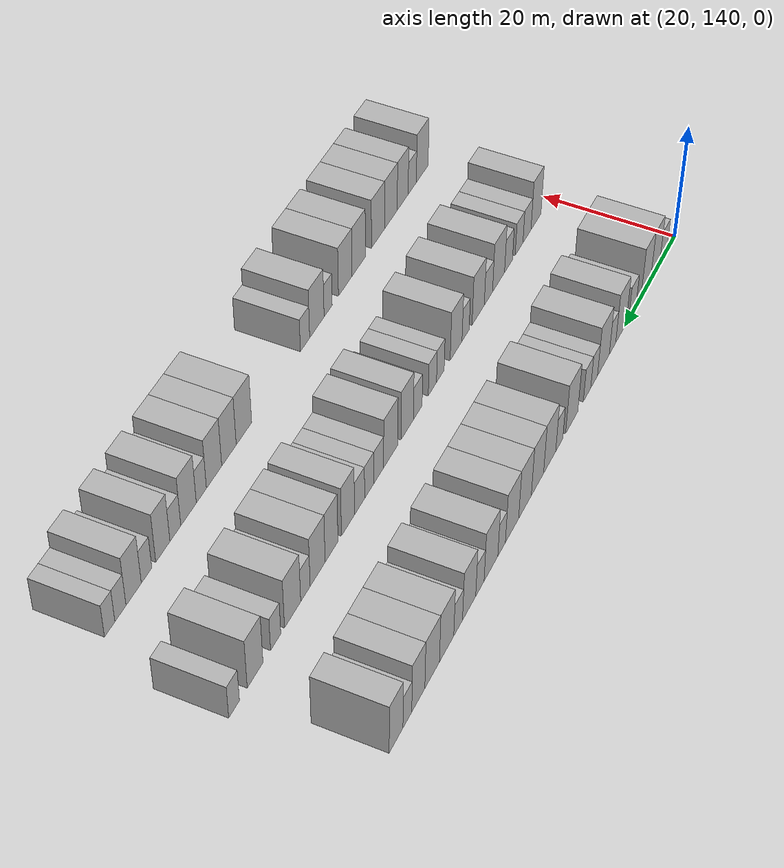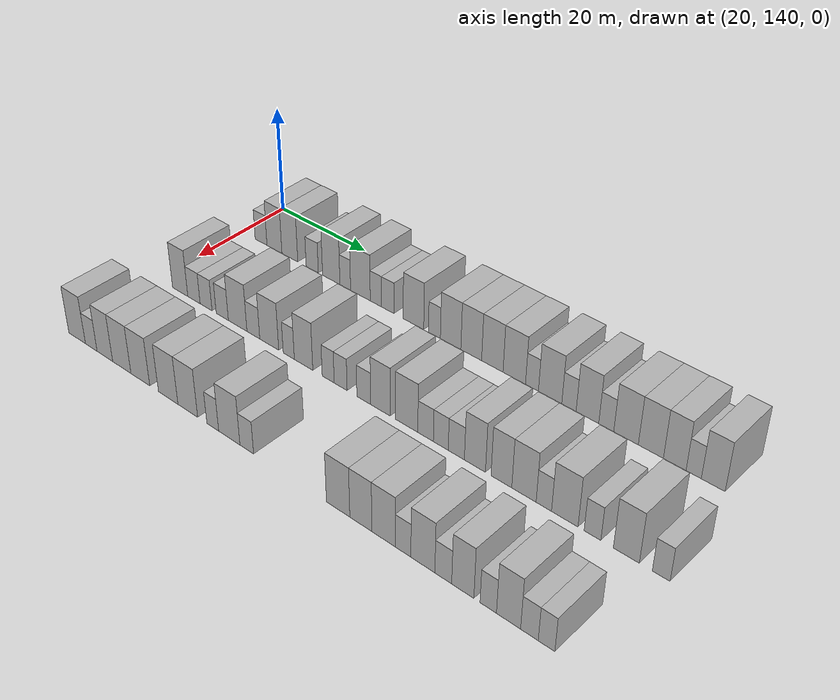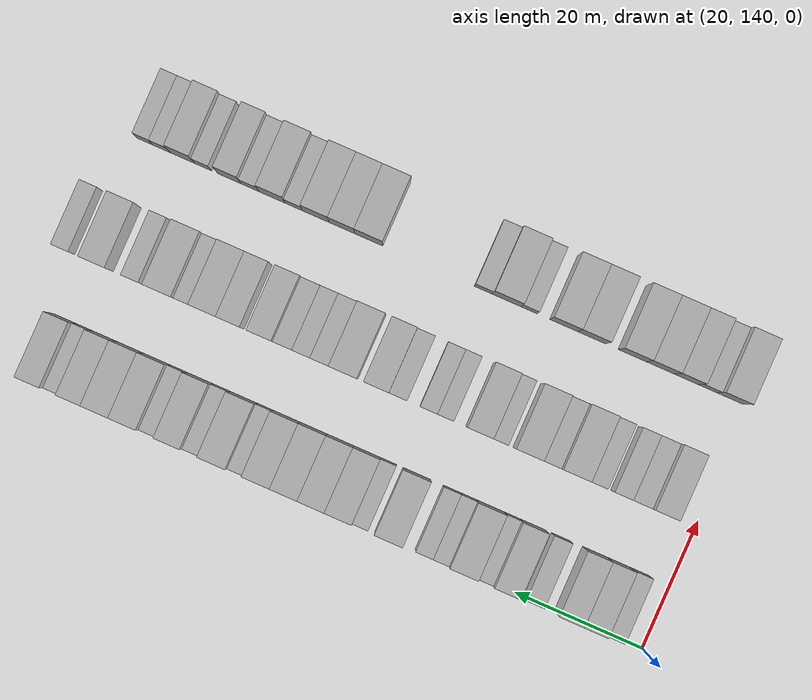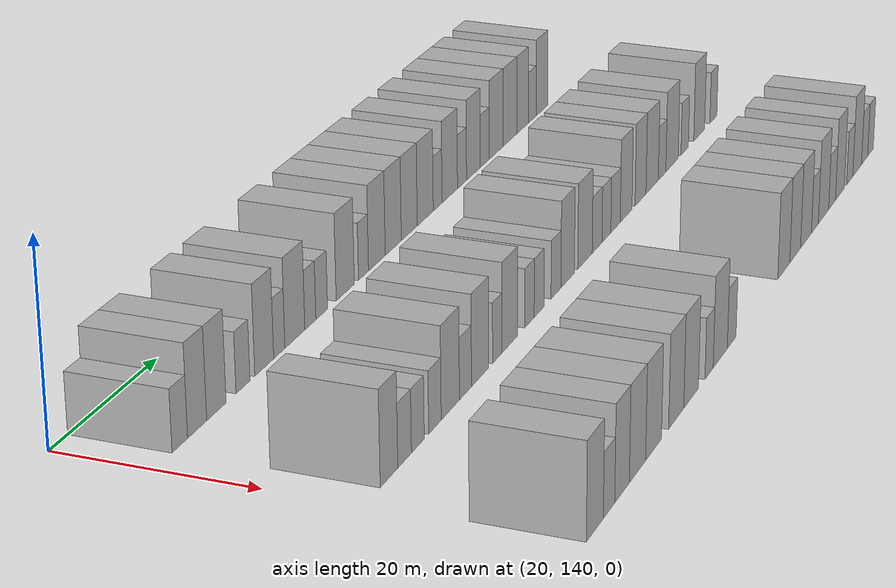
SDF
<sdf version="1.6">
 <world name="default">
  <model name="building_93">
   <static>1</static>
   <pose>25.0000 144.8030 0 0.000000 0.000000 0.000000</pose>
   <link name="link">
    <pose>0 0 3.00 0 0 0</pose>
    <collision name="collision"><geometry><box><size>10.0000 2.9316 6.0000</size></box></geometry></collision>
    <visual name="visual">
     <cast_shadows>0</cast_shadows>
     <geometry><box><size>10.0000 2.9316 6.0000</size></box></geometry>
     <material>
      <script>
       <uri>model://HANNAS_wall/materials/scripts</uri>
       <uri>model://HANNAS_wall/materials/textures</uri>
       <name>vrc/HANNAS_wall</name>
      </script>
     </material>
    </visual>
   </link>
  </model>
  <model name="building_94">
   <static>1</static>
   <pose>25.0000 148.1023 0 0.000000 0.000000 0.000000</pose>
   <link name="link">
    <pose>0 0 4.50 0 0 0</pose>
    <collision name="collision"><geometry><box><size>10.0000 3.6670 9.0000</size></box></geometry></collision>
    <visual name="visual">
     <cast_shadows>0</cast_shadows>
     <geometry><box><size>10.0000 3.6670 9.0000</size></box></geometry>
     <material>
      <script>
       <uri>model://HANNAS_wall/materials/scripts</uri>
       <uri>model://HANNAS_wall/materials/textures</uri>
       <name>vrc/HANNAS_wall</name>
      </script>
     </material>
    </visual>
   </link>
  </model>
  <model name="building_95">
   <static>1</static>
   <pose>25.0000 151.8458 0 0.000000 0.000000 0.000000</pose>
   <link name="link">
    <pose>0 0 4.50 0 0 0</pose>
    <collision name="collision"><geometry><box><size>10.0000 3.8200 9.0000</size></box></geometry></collision>
    <visual name="visual">
     <cast_shadows>0</cast_shadows>
     <geometry><box><size>10.0000 3.8200 9.0000</size></box></geometry>
     <material>
      <script>
       <uri>model://HANNAS_wall/materials/scripts</uri>
       <uri>model://HANNAS_wall/materials/textures</uri>
       <name>vrc/HANNAS_wall</name>
      </script>
     </material>
    </visual>
   </link>
  </model>
  <model name="building_96">
   <static>1</static>
   <pose>25.0000 157.1826 0 0.000000 0.000000 0.000000</pose>
   <link name="link">
    <pose>0 0 3.00 0 0 0</pose>
    <collision name="collision"><geometry><box><size>10.0000 2.8535 6.0000</size></box></geometry></collision>
    <visual name="visual">
     <cast_shadows>0</cast_shadows>
     <geometry><box><size>10.0000 2.8535 6.0000</size></box></geometry>
     <material>
      <script>
       <uri>model://HANNAS_wall/materials/scripts</uri>
       <uri>model://HANNAS_wall/materials/textures</uri>
       <name>vrc/HANNAS_wall</name>
      </script>
     </material>
    </visual>
   </link>
  </model>
  <model name="building_97">
   <static>1</static>
   <pose>25.0000 161.6057 0 0.000000 0.000000 0.000000</pose>
   <link name="link">
    <pose>0 0 4.50 0 0 0</pose>
    <collision name="collision"><geometry><box><size>10.0000 3.9927 9.0000</size></box></geometry></collision>
    <visual name="visual">
     <cast_shadows>0</cast_shadows>
     <geometry><box><size>10.0000 3.9927 9.0000</size></box></geometry>
     <material>
      <script>
       <uri>model://HANNAS_wall/materials/scripts</uri>
       <uri>model://HANNAS_wall/materials/textures</uri>
       <name>vrc/HANNAS_wall</name>
      </script>
     </material>
    </visual>
   </link>
  </model>
  <model name="building_98">
   <static>1</static>
   <pose>25.0000 164.8138 0 0.000000 0.000000 0.000000</pose>
   <link name="link">
    <pose>0 0 3.00 0 0 0</pose>
    <collision name="collision"><geometry><box><size>10.0000 2.4236 6.0000</size></box></geometry></collision>
    <visual name="visual">
     <cast_shadows>0</cast_shadows>
     <geometry><box><size>10.0000 2.4236 6.0000</size></box></geometry>
     <material>
      <script>
       <uri>model://HANNAS_wall/materials/scripts</uri>
       <uri>model://HANNAS_wall/materials/textures</uri>
       <name>vrc/HANNAS_wall</name>
      </script>
     </material>
    </visual>
   </link>
  </model>
  <model name="building_99">
   <static>1</static>
   <pose>25.0000 168.2265 0 0.000000 0.000000 0.000000</pose>
   <link name="link">
    <pose>0 0 4.50 0 0 0</pose>
    <collision name="collision"><geometry><box><size>10.0000 4.4019 9.0000</size></box></geometry></collision>
    <visual name="visual">
     <cast_shadows>0</cast_shadows>
     <geometry><box><size>10.0000 4.4019 9.0000</size></box></geometry>
     <material>
      <script>
       <uri>model://HANNAS_wall/materials/scripts</uri>
       <uri>model://HANNAS_wall/materials/textures</uri>
       <name>vrc/HANNAS_wall</name>
      </script>
     </material>
    </visual>
   </link>
  </model>
  <model name="building_100">
   <static>1</static>
   <pose>25.0000 171.6701 0 0.000000 0.000000 0.000000</pose>
   <link name="link">
    <pose>0 0 3.00 0 0 0</pose>
    <collision name="collision"><geometry><box><size>10.0000 2.4854 6.0000</size></box></geometry></collision>
    <visual name="visual">
     <cast_shadows>0</cast_shadows>
     <geometry><box><size>10.0000 2.4854 6.0000</size></box></geometry>
     <material>
      <script>
       <uri>model://HANNAS_wall/materials/scripts</uri>
       <uri>model://HANNAS_wall/materials/textures</uri>
       <name>vrc/HANNAS_wall</name>
      </script>
     </material>
    </visual>
   </link>
  </model>
  <model name="building_101">
   <static>1</static>
   <pose>25.0000 174.2601 0 0.000000 0.000000 0.000000</pose>
   <link name="link">
    <pose>0 0 3.00 0 0 0</pose>
    <collision name="collision"><geometry><box><size>10.0000 2.6946 6.0000</size></box></geometry></collision>
    <visual name="visual">
     <cast_shadows>0</cast_shadows>
     <geometry><box><size>10.0000 2.6946 6.0000</size></box></geometry>
     <material>
      <script>
       <uri>model://HANNAS_wall/materials/scripts</uri>
       <uri>model://HANNAS_wall/materials/textures</uri>
       <name>vrc/HANNAS_wall</name>
      </script>
     </material>
    </visual>
   </link>
  </model>
  <model name="building_102">
   <static>1</static>
   <pose>25.0000 179.7743 0 0.000000 0.000000 0.000000</pose>
   <link name="link">
    <pose>0 0 4.50 0 0 0</pose>
    <collision name="collision"><geometry><box><size>10.0000 4.3339 9.0000</size></box></geometry></collision>
    <visual name="visual">
     <cast_shadows>0</cast_shadows>
     <geometry><box><size>10.0000 4.3339 9.0000</size></box></geometry>
     <material>
      <script>
       <uri>model://HANNAS_wall/materials/scripts</uri>
       <uri>model://HANNAS_wall/materials/textures</uri>
       <name>vrc/HANNAS_wall</name>
      </script>
     </material>
    </visual>
   </link>
  </model>
  <model name="building_103">
   <static>1</static>
   <pose>25.0000 184.1730 0 0.000000 0.000000 0.000000</pose>
   <link name="link">
    <pose>0 0 3.00 0 0 0</pose>
    <collision name="collision"><geometry><box><size>10.0000 2.4634 6.0000</size></box></geometry></collision>
    <visual name="visual">
     <cast_shadows>0</cast_shadows>
     <geometry><box><size>10.0000 2.4634 6.0000</size></box></geometry>
     <material>
      <script>
       <uri>model://HANNAS_wall/materials/scripts</uri>
       <uri>model://HANNAS_wall/materials/textures</uri>
       <name>vrc/HANNAS_wall</name>
      </script>
     </material>
    </visual>
   </link>
  </model>
  <model name="building_104">
   <static>1</static>
   <pose>25.0000 187.4968 0 0.000000 0.000000 0.000000</pose>
   <link name="link">
    <pose>0 0 4.50 0 0 0</pose>
    <collision name="collision"><geometry><box><size>10.0000 4.1841 9.0000</size></box></geometry></collision>
    <visual name="visual">
     <cast_shadows>0</cast_shadows>
     <geometry><box><size>10.0000 4.1841 9.0000</size></box></geometry>
     <material>
      <script>
       <uri>model://HANNAS_wall/materials/scripts</uri>
       <uri>model://HANNAS_wall/materials/textures</uri>
       <name>vrc/HANNAS_wall</name>
      </script>
     </material>
    </visual>
   </link>
  </model>
  <model name="building_105">
   <static>1</static>
   <pose>25.0000 191.6620 0 0.000000 0.000000 0.000000</pose>
   <link name="link">
    <pose>0 0 4.50 0 0 0</pose>
    <collision name="collision"><geometry><box><size>10.0000 4.1463 9.0000</size></box></geometry></collision>
    <visual name="visual">
     <cast_shadows>0</cast_shadows>
     <geometry><box><size>10.0000 4.1463 9.0000</size></box></geometry>
     <material>
      <script>
       <uri>model://HANNAS_wall/materials/scripts</uri>
       <uri>model://HANNAS_wall/materials/textures</uri>
       <name>vrc/HANNAS_wall</name>
      </script>
     </material>
    </visual>
   </link>
  </model>
  <model name="building_106">
   <static>1</static>
   <pose>25.0000 195.8361 0 0.000000 0.000000 0.000000</pose>
   <link name="link">
    <pose>0 0 4.50 0 0 0</pose>
    <collision name="collision"><geometry><box><size>10.0000 4.2018 9.0000</size></box></geometry></collision>
    <visual name="visual">
     <cast_shadows>0</cast_shadows>
     <geometry><box><size>10.0000 4.2018 9.0000</size></box></geometry>
     <material>
      <script>
       <uri>model://HANNAS_wall/materials/scripts</uri>
       <uri>model://HANNAS_wall/materials/textures</uri>
       <name>vrc/HANNAS_wall</name>
      </script>
     </material>
    </visual>
   </link>
  </model>
  <model name="building_107">
   <static>1</static>
   <pose>25.0000 200.0921 0 0.000000 0.000000 0.000000</pose>
   <link name="link">
    <pose>0 0 4.50 0 0 0</pose>
    <collision name="collision"><geometry><box><size>10.0000 4.3103 9.0000</size></box></geometry></collision>
    <visual name="visual">
     <cast_shadows>0</cast_shadows>
     <geometry><box><size>10.0000 4.3103 9.0000</size></box></geometry>
     <material>
      <script>
       <uri>model://HANNAS_wall/materials/scripts</uri>
       <uri>model://HANNAS_wall/materials/textures</uri>
       <name>vrc/HANNAS_wall</name>
      </script>
     </material>
    </visual>
   </link>
  </model>
  <model name="building_108">
   <static>1</static>
   <pose>25.0000 203.4640 0 0.000000 0.000000 0.000000</pose>
   <link name="link">
    <pose>0 0 3.00 0 0 0</pose>
    <collision name="collision"><geometry><box><size>10.0000 2.4335 6.0000</size></box></geometry></collision>
    <visual name="visual">
     <cast_shadows>0</cast_shadows>
     <geometry><box><size>10.0000 2.4335 6.0000</size></box></geometry>
     <material>
      <script>
       <uri>model://HANNAS_wall/materials/scripts</uri>
       <uri>model://HANNAS_wall/materials/textures</uri>
       <name>vrc/HANNAS_wall</name>
      </script>
     </material>
    </visual>
   </link>
  </model>
  <model name="building_109">
   <static>1</static>
   <pose>25.0000 206.8471 0 0.000000 0.000000 0.000000</pose>
   <link name="link">
    <pose>0 0 4.50 0 0 0</pose>
    <collision name="collision"><geometry><box><size>10.0000 4.3325 9.0000</size></box></geometry></collision>
    <visual name="visual">
     <cast_shadows>0</cast_shadows>
     <geometry><box><size>10.0000 4.3325 9.0000</size></box></geometry>
     <material>
      <script>
       <uri>model://HANNAS_wall/materials/scripts</uri>
       <uri>model://HANNAS_wall/materials/textures</uri>
       <name>vrc/HANNAS_wall</name>
      </script>
     </material>
    </visual>
   </link>
  </model>
  <model name="building_110">
   <static>1</static>
   <pose>25.0000 210.3174 0 0.000000 0.000000 0.000000</pose>
   <link name="link">
    <pose>0 0 3.00 0 0 0</pose>
    <collision name="collision"><geometry><box><size>10.0000 2.6081 6.0000</size></box></geometry></collision>
    <visual name="visual">
     <cast_shadows>0</cast_shadows>
     <geometry><box><size>10.0000 2.6081 6.0000</size></box></geometry>
     <material>
      <script>
       <uri>model://HANNAS_wall/materials/scripts</uri>
       <uri>model://HANNAS_wall/materials/textures</uri>
       <name>vrc/HANNAS_wall</name>
      </script>
     </material>
    </visual>
   </link>
  </model>
  <model name="building_111">
   <static>1</static>
   <pose>25.0000 213.6458 0 0.000000 0.000000 0.000000</pose>
   <link name="link">
    <pose>0 0 4.50 0 0 0</pose>
    <collision name="collision"><geometry><box><size>10.0000 4.0488 9.0000</size></box></geometry></collision>
    <visual name="visual">
     <cast_shadows>0</cast_shadows>
     <geometry><box><size>10.0000 4.0488 9.0000</size></box></geometry>
     <material>
      <script>
       <uri>model://HANNAS_wall/materials/scripts</uri>
       <uri>model://HANNAS_wall/materials/textures</uri>
       <name>vrc/HANNAS_wall</name>
      </script>
     </material>
    </visual>
   </link>
  </model>
  <model name="building_112">
   <static>1</static>
   <pose>25.0000 216.9913 0 0.000000 0.000000 0.000000</pose>
   <link name="link">
    <pose>0 0 3.00 0 0 0</pose>
    <collision name="collision"><geometry><box><size>10.0000 2.6421 6.0000</size></box></geometry></collision>
    <visual name="visual">
     <cast_shadows>0</cast_shadows>
     <geometry><box><size>10.0000 2.6421 6.0000</size></box></geometry>
     <material>
      <script>
       <uri>model://HANNAS_wall/materials/scripts</uri>
       <uri>model://HANNAS_wall/materials/textures</uri>
       <name>vrc/HANNAS_wall</name>
      </script>
     </material>
    </visual>
   </link>
  </model>
  <model name="building_113">
   <static>1</static>
   <pose>25.0000 220.4336 0 0.000000 0.000000 0.000000</pose>
   <link name="link">
    <pose>0 0 4.50 0 0 0</pose>
    <collision name="collision"><geometry><box><size>10.0000 4.2424 9.0000</size></box></geometry></collision>
    <visual name="visual">
     <cast_shadows>0</cast_shadows>
     <geometry><box><size>10.0000 4.2424 9.0000</size></box></geometry>
     <material>
      <script>
       <uri>model://HANNAS_wall/materials/scripts</uri>
       <uri>model://HANNAS_wall/materials/textures</uri>
       <name>vrc/HANNAS_wall</name>
      </script>
     </material>
    </visual>
   </link>
  </model>
  <model name="building_114">
   <static>1</static>
   <pose>25.0000 224.6761 0 0.000000 0.000000 0.000000</pose>
   <link name="link">
    <pose>0 0 4.50 0 0 0</pose>
    <collision name="collision"><geometry><box><size>10.0000 4.2427 9.0000</size></box></geometry></collision>
    <visual name="visual">
     <cast_shadows>0</cast_shadows>
     <geometry><box><size>10.0000 4.2427 9.0000</size></box></geometry>
     <material>
      <script>
       <uri>model://HANNAS_wall/materials/scripts</uri>
       <uri>model://HANNAS_wall/materials/textures</uri>
       <name>vrc/HANNAS_wall</name>
      </script>
     </material>
    </visual>
   </link>
  </model>
  <model name="building_115">
   <static>1</static>
   <pose>25.0000 228.6685 0 0.000000 0.000000 0.000000</pose>
   <link name="link">
    <pose>0 0 4.50 0 0 0</pose>
    <collision name="collision"><geometry><box><size>10.0000 3.7419 9.0000</size></box></geometry></collision>
    <visual name="visual">
     <cast_shadows>0</cast_shadows>
     <geometry><box><size>10.0000 3.7419 9.0000</size></box></geometry>
     <material>
      <script>
       <uri>model://HANNAS_wall/materials/scripts</uri>
       <uri>model://HANNAS_wall/materials/textures</uri>
       <name>vrc/HANNAS_wall</name>
      </script>
     </material>
    </visual>
   </link>
  </model>
  <model name="building_116">
   <static>1</static>
   <pose>25.0000 231.7791 0 0.000000 0.000000 0.000000</pose>
   <link name="link">
    <pose>0 0 3.00 0 0 0</pose>
    <collision name="collision"><geometry><box><size>10.0000 2.4793 6.0000</size></box></geometry></collision>
    <visual name="visual">
     <cast_shadows>0</cast_shadows>
     <geometry><box><size>10.0000 2.4793 6.0000</size></box></geometry>
     <material>
      <script>
       <uri>model://HANNAS_wall/materials/scripts</uri>
       <uri>model://HANNAS_wall/materials/textures</uri>
       <name>vrc/HANNAS_wall</name>
      </script>
     </material>
    </visual>
   </link>
  </model>
  <model name="building_117">
   <static>1</static>
   <pose>25.0000 234.9269 0 0.000000 0.000000 0.000000</pose>
   <link name="link">
    <pose>0 0 4.50 0 0 0</pose>
    <collision name="collision"><geometry><box><size>10.0000 3.8163 9.0000</size></box></geometry></collision>
    <visual name="visual">
     <cast_shadows>0</cast_shadows>
     <geometry><box><size>10.0000 3.8163 9.0000</size></box></geometry>
     <material>
      <script>
       <uri>model://HANNAS_wall/materials/scripts</uri>
       <uri>model://HANNAS_wall/materials/textures</uri>
       <name>vrc/HANNAS_wall</name>
      </script>
     </material>
    </visual>
   </link>
  </model>
  <model name="building_221">
   <static>1</static>
   <pose>44.0000 145.5382 0 0.000000 0.000000 0.000000</pose>
   <link name="link">
    <pose>0 0 4.50 0 0 0</pose>
    <collision name="collision"><geometry><box><size>10.0000 3.7635 9.0000</size></box></geometry></collision>
    <visual name="visual">
     <cast_shadows>0</cast_shadows>
     <geometry><box><size>10.0000 3.7635 9.0000</size></box></geometry>
     <material>
      <script>
       <uri>model://HANNAS_wall/materials/scripts</uri>
       <uri>model://HANNAS_wall/materials/textures</uri>
       <name>vrc/HANNAS_wall</name>
      </script>
     </material>
    </visual>
   </link>
  </model>
  <model name="building_222">
   <static>1</static>
   <pose>44.0000 148.9173 0 0.000000 0.000000 0.000000</pose>
   <link name="link">
    <pose>0 0 3.00 0 0 0</pose>
    <collision name="collision"><geometry><box><size>10.0000 2.9948 6.0000</size></box></geometry></collision>
    <visual name="visual">
     <cast_shadows>0</cast_shadows>
     <geometry><box><size>10.0000 2.9948 6.0000</size></box></geometry>
     <material>
      <script>
       <uri>model://HANNAS_wall/materials/scripts</uri>
       <uri>model://HANNAS_wall/materials/textures</uri>
       <name>vrc/HANNAS_wall</name>
      </script>
     </material>
    </visual>
   </link>
  </model>
  <model name="building_223">
   <static>1</static>
   <pose>44.0000 151.8468 0 0.000000 0.000000 0.000000</pose>
   <link name="link">
    <pose>0 0 3.00 0 0 0</pose>
    <collision name="collision"><geometry><box><size>10.0000 2.8642 6.0000</size></box></geometry></collision>
    <visual name="visual">
     <cast_shadows>0</cast_shadows>
     <geometry><box><size>10.0000 2.8642 6.0000</size></box></geometry>
     <material>
      <script>
       <uri>model://HANNAS_wall/materials/scripts</uri>
       <uri>model://HANNAS_wall/materials/textures</uri>
       <name>vrc/HANNAS_wall</name>
      </script>
     </material>
    </visual>
   </link>
  </model>
  <model name="building_224">
   <static>1</static>
   <pose>44.0000 155.7171 0 0.000000 0.000000 0.000000</pose>
   <link name="link">
    <pose>0 0 3.00 0 0 0</pose>
    <collision name="collision"><geometry><box><size>10.0000 2.8763 6.0000</size></box></geometry></collision>
    <visual name="visual">
     <cast_shadows>0</cast_shadows>
     <geometry><box><size>10.0000 2.8763 6.0000</size></box></geometry>
     <material>
      <script>
       <uri>model://HANNAS_wall/materials/scripts</uri>
       <uri>model://HANNAS_wall/materials/textures</uri>
       <name>vrc/HANNAS_wall</name>
      </script>
     </material>
    </visual>
   </link>
  </model>
  <model name="building_225">
   <static>1</static>
   <pose>44.0000 159.3083 0 0.000000 0.000000 0.000000</pose>
   <link name="link">
    <pose>0 0 4.50 0 0 0</pose>
    <collision name="collision"><geometry><box><size>10.0000 4.3061 9.0000</size></box></geometry></collision>
    <visual name="visual">
     <cast_shadows>0</cast_shadows>
     <geometry><box><size>10.0000 4.3061 9.0000</size></box></geometry>
     <material>
      <script>
       <uri>model://HANNAS_wall/materials/scripts</uri>
       <uri>model://HANNAS_wall/materials/textures</uri>
       <name>vrc/HANNAS_wall</name>
      </script>
     </material>
    </visual>
   </link>
  </model>
  <model name="building_226">
   <static>1</static>
   <pose>44.0000 162.9239 0 0.000000 0.000000 0.000000</pose>
   <link name="link">
    <pose>0 0 3.00 0 0 0</pose>
    <collision name="collision"><geometry><box><size>10.0000 2.9250 6.0000</size></box></geometry></collision>
    <visual name="visual">
     <cast_shadows>0</cast_shadows>
     <geometry><box><size>10.0000 2.9250 6.0000</size></box></geometry>
     <material>
      <script>
       <uri>model://HANNAS_wall/materials/scripts</uri>
       <uri>model://HANNAS_wall/materials/textures</uri>
       <name>vrc/HANNAS_wall</name>
      </script>
     </material>
    </visual>
   </link>
  </model>
  <model name="building_227">
   <static>1</static>
   <pose>44.0000 166.5088 0 0.000000 0.000000 0.000000</pose>
   <link name="link">
    <pose>0 0 4.50 0 0 0</pose>
    <collision name="collision"><geometry><box><size>10.0000 4.2447 9.0000</size></box></geometry></collision>
    <visual name="visual">
     <cast_shadows>0</cast_shadows>
     <geometry><box><size>10.0000 4.2447 9.0000</size></box></geometry>
     <material>
      <script>
       <uri>model://HANNAS_wall/materials/scripts</uri>
       <uri>model://HANNAS_wall/materials/textures</uri>
       <name>vrc/HANNAS_wall</name>
      </script>
     </material>
    </visual>
   </link>
  </model>
  <model name="building_228">
   <static>1</static>
   <pose>44.0000 170.8523 0 0.000000 0.000000 0.000000</pose>
   <link name="link">
    <pose>0 0 3.00 0 0 0</pose>
    <collision name="collision"><geometry><box><size>10.0000 2.4423 6.0000</size></box></geometry></collision>
    <visual name="visual">
     <cast_shadows>0</cast_shadows>
     <geometry><box><size>10.0000 2.4423 6.0000</size></box></geometry>
     <material>
      <script>
       <uri>model://HANNAS_wall/materials/scripts</uri>
       <uri>model://HANNAS_wall/materials/textures</uri>
       <name>vrc/HANNAS_wall</name>
      </script>
     </material>
    </visual>
   </link>
  </model>
  <model name="building_229">
   <static>1</static>
   <pose>44.0000 174.0675 0 0.000000 0.000000 0.000000</pose>
   <link name="link">
    <pose>0 0 4.50 0 0 0</pose>
    <collision name="collision"><geometry><box><size>10.0000 3.9883 9.0000</size></box></geometry></collision>
    <visual name="visual">
     <cast_shadows>0</cast_shadows>
     <geometry><box><size>10.0000 3.9883 9.0000</size></box></geometry>
     <material>
      <script>
       <uri>model://HANNAS_wall/materials/scripts</uri>
       <uri>model://HANNAS_wall/materials/textures</uri>
       <name>vrc/HANNAS_wall</name>
      </script>
     </material>
    </visual>
   </link>
  </model>
  <model name="building_230">
   <static>1</static>
   <pose>44.0000 179.3222 0 0.000000 0.000000 0.000000</pose>
   <link name="link">
    <pose>0 0 3.00 0 0 0</pose>
    <collision name="collision"><geometry><box><size>10.0000 2.5210 6.0000</size></box></geometry></collision>
    <visual name="visual">
     <cast_shadows>0</cast_shadows>
     <geometry><box><size>10.0000 2.5210 6.0000</size></box></geometry>
     <material>
      <script>
       <uri>model://HANNAS_wall/materials/scripts</uri>
       <uri>model://HANNAS_wall/materials/textures</uri>
       <name>vrc/HANNAS_wall</name>
      </script>
     </material>
    </visual>
   </link>
  </model>
  <model name="building_231">
   <static>1</static>
   <pose>44.0000 181.9251 0 0.000000 0.000000 0.000000</pose>
   <link name="link">
    <pose>0 0 3.00 0 0 0</pose>
    <collision name="collision"><geometry><box><size>10.0000 2.6850 6.0000</size></box></geometry></collision>
    <visual name="visual">
     <cast_shadows>0</cast_shadows>
     <geometry><box><size>10.0000 2.6850 6.0000</size></box></geometry>
     <material>
      <script>
       <uri>model://HANNAS_wall/materials/scripts</uri>
       <uri>model://HANNAS_wall/materials/textures</uri>
       <name>vrc/HANNAS_wall</name>
      </script>
     </material>
    </visual>
   </link>
  </model>
  <model name="building_232">
   <static>1</static>
   <pose>44.0000 186.6701 0 0.000000 0.000000 0.000000</pose>
   <link name="link">
    <pose>0 0 3.00 0 0 0</pose>
    <collision name="collision"><geometry><box><size>10.0000 2.8049 6.0000</size></box></geometry></collision>
    <visual name="visual">
     <cast_shadows>0</cast_shadows>
     <geometry><box><size>10.0000 2.8049 6.0000</size></box></geometry>
     <material>
      <script>
       <uri>model://HANNAS_wall/materials/scripts</uri>
       <uri>model://HANNAS_wall/materials/textures</uri>
       <name>vrc/HANNAS_wall</name>
      </script>
     </material>
    </visual>
   </link>
  </model>
  <model name="building_233">
   <static>1</static>
   <pose>44.0000 190.0199 0 0.000000 0.000000 0.000000</pose>
   <link name="link">
    <pose>0 0 4.50 0 0 0</pose>
    <collision name="collision"><geometry><box><size>10.0000 3.8948 9.0000</size></box></geometry></collision>
    <visual name="visual">
     <cast_shadows>0</cast_shadows>
     <geometry><box><size>10.0000 3.8948 9.0000</size></box></geometry>
     <material>
      <script>
       <uri>model://HANNAS_wall/materials/scripts</uri>
       <uri>model://HANNAS_wall/materials/textures</uri>
       <name>vrc/HANNAS_wall</name>
      </script>
     </material>
    </visual>
   </link>
  </model>
  <model name="building_234">
   <static>1</static>
   <pose>44.0000 195.1440 0 0.000000 0.000000 0.000000</pose>
   <link name="link">
    <pose>0 0 4.50 0 0 0</pose>
    <collision name="collision"><geometry><box><size>10.0000 4.3534 9.0000</size></box></geometry></collision>
    <visual name="visual">
     <cast_shadows>0</cast_shadows>
     <geometry><box><size>10.0000 4.3534 9.0000</size></box></geometry>
     <material>
      <script>
       <uri>model://HANNAS_wall/materials/scripts</uri>
       <uri>model://HANNAS_wall/materials/textures</uri>
       <name>vrc/HANNAS_wall</name>
      </script>
     </material>
    </visual>
   </link>
  </model>
  <model name="building_235">
   <static>1</static>
   <pose>44.0000 198.8051 0 0.000000 0.000000 0.000000</pose>
   <link name="link">
    <pose>0 0 3.00 0 0 0</pose>
    <collision name="collision"><geometry><box><size>10.0000 2.9688 6.0000</size></box></geometry></collision>
    <visual name="visual">
     <cast_shadows>0</cast_shadows>
     <geometry><box><size>10.0000 2.9688 6.0000</size></box></geometry>
     <material>
      <script>
       <uri>model://HANNAS_wall/materials/scripts</uri>
       <uri>model://HANNAS_wall/materials/textures</uri>
       <name>vrc/HANNAS_wall</name>
      </script>
     </material>
    </visual>
   </link>
  </model>
  <model name="building_236">
   <static>1</static>
   <pose>44.0000 201.6802 0 0.000000 0.000000 0.000000</pose>
   <link name="link">
    <pose>0 0 3.00 0 0 0</pose>
    <collision name="collision"><geometry><box><size>10.0000 2.7814 6.0000</size></box></geometry></collision>
    <visual name="visual">
     <cast_shadows>0</cast_shadows>
     <geometry><box><size>10.0000 2.7814 6.0000</size></box></geometry>
     <material>
      <script>
       <uri>model://HANNAS_wall/materials/scripts</uri>
       <uri>model://HANNAS_wall/materials/textures</uri>
       <name>vrc/HANNAS_wall</name>
      </script>
     </material>
    </visual>
   </link>
  </model>
  <model name="building_237">
   <static>1</static>
   <pose>44.0000 204.5623 0 0.000000 0.000000 0.000000</pose>
   <link name="link">
    <pose>0 0 3.00 0 0 0</pose>
    <collision name="collision"><geometry><box><size>10.0000 2.9828 6.0000</size></box></geometry></collision>
    <visual name="visual">
     <cast_shadows>0</cast_shadows>
     <geometry><box><size>10.0000 2.9828 6.0000</size></box></geometry>
     <material>
      <script>
       <uri>model://HANNAS_wall/materials/scripts</uri>
       <uri>model://HANNAS_wall/materials/textures</uri>
       <name>vrc/HANNAS_wall</name>
      </script>
     </material>
    </visual>
   </link>
  </model>
  <model name="building_238">
   <static>1</static>
   <pose>44.0000 207.9618 0 0.000000 0.000000 0.000000</pose>
   <link name="link">
    <pose>0 0 4.50 0 0 0</pose>
    <collision name="collision"><geometry><box><size>10.0000 3.8161 9.0000</size></box></geometry></collision>
    <visual name="visual">
     <cast_shadows>0</cast_shadows>
     <geometry><box><size>10.0000 3.8161 9.0000</size></box></geometry>
     <material>
      <script>
       <uri>model://HANNAS_wall/materials/scripts</uri>
       <uri>model://HANNAS_wall/materials/textures</uri>
       <name>vrc/HANNAS_wall</name>
      </script>
     </material>
    </visual>
   </link>
  </model>
  <model name="building_239">
   <static>1</static>
   <pose>44.0000 212.7033 0 0.000000 0.000000 0.000000</pose>
   <link name="link">
    <pose>0 0 4.50 0 0 0</pose>
    <collision name="collision"><geometry><box><size>10.0000 3.6670 9.0000</size></box></geometry></collision>
    <visual name="visual">
     <cast_shadows>0</cast_shadows>
     <geometry><box><size>10.0000 3.6670 9.0000</size></box></geometry>
     <material>
      <script>
       <uri>model://HANNAS_wall/materials/scripts</uri>
       <uri>model://HANNAS_wall/materials/textures</uri>
       <name>vrc/HANNAS_wall</name>
      </script>
     </material>
    </visual>
   </link>
  </model>
  <model name="building_240">
   <static>1</static>
   <pose>44.0000 216.6404 0 0.000000 0.000000 0.000000</pose>
   <link name="link">
    <pose>0 0 4.50 0 0 0</pose>
    <collision name="collision"><geometry><box><size>10.0000 4.2072 9.0000</size></box></geometry></collision>
    <visual name="visual">
     <cast_shadows>0</cast_shadows>
     <geometry><box><size>10.0000 4.2072 9.0000</size></box></geometry>
     <material>
      <script>
       <uri>model://HANNAS_wall/materials/scripts</uri>
       <uri>model://HANNAS_wall/materials/textures</uri>
       <name>vrc/HANNAS_wall</name>
      </script>
     </material>
    </visual>
   </link>
  </model>
  <model name="building_241">
   <static>1</static>
   <pose>44.0000 220.0496 0 0.000000 0.000000 0.000000</pose>
   <link name="link">
    <pose>0 0 3.00 0 0 0</pose>
    <collision name="collision"><geometry><box><size>10.0000 2.6113 6.0000</size></box></geometry></collision>
    <visual name="visual">
     <cast_shadows>0</cast_shadows>
     <geometry><box><size>10.0000 2.6113 6.0000</size></box></geometry>
     <material>
      <script>
       <uri>model://HANNAS_wall/materials/scripts</uri>
       <uri>model://HANNAS_wall/materials/textures</uri>
       <name>vrc/HANNAS_wall</name>
      </script>
     </material>
    </visual>
   </link>
  </model>
  <model name="building_242">
   <static>1</static>
   <pose>44.0000 223.5564 0 0.000000 0.000000 0.000000</pose>
   <link name="link">
    <pose>0 0 4.50 0 0 0</pose>
    <collision name="collision"><geometry><box><size>10.0000 4.4022 9.0000</size></box></geometry></collision>
    <visual name="visual">
     <cast_shadows>0</cast_shadows>
     <geometry><box><size>10.0000 4.4022 9.0000</size></box></geometry>
     <material>
      <script>
       <uri>model://HANNAS_wall/materials/scripts</uri>
       <uri>model://HANNAS_wall/materials/textures</uri>
       <name>vrc/HANNAS_wall</name>
      </script>
     </material>
    </visual>
   </link>
  </model>
  <model name="building_243">
   <static>1</static>
   <pose>44.0000 228.1131 0 0.000000 0.000000 0.000000</pose>
   <link name="link">
    <pose>0 0 3.00 0 0 0</pose>
    <collision name="collision"><geometry><box><size>10.0000 2.7113 6.0000</size></box></geometry></collision>
    <visual name="visual">
     <cast_shadows>0</cast_shadows>
     <geometry><box><size>10.0000 2.7113 6.0000</size></box></geometry>
     <material>
      <script>
       <uri>model://HANNAS_wall/materials/scripts</uri>
       <uri>model://HANNAS_wall/materials/textures</uri>
       <name>vrc/HANNAS_wall</name>
      </script>
     </material>
    </visual>
   </link>
  </model>
  <model name="building_244">
   <static>1</static>
   <pose>44.0000 233.5124 0 0.000000 0.000000 0.000000</pose>
   <link name="link">
    <pose>0 0 4.50 0 0 0</pose>
    <collision name="collision"><geometry><box><size>10.0000 4.0873 9.0000</size></box></geometry></collision>
    <visual name="visual">
     <cast_shadows>0</cast_shadows>
     <geometry><box><size>10.0000 4.0873 9.0000</size></box></geometry>
     <material>
      <script>
       <uri>model://HANNAS_wall/materials/scripts</uri>
       <uri>model://HANNAS_wall/materials/textures</uri>
       <name>vrc/HANNAS_wall</name>
      </script>
     </material>
    </visual>
   </link>
  </model>
  <model name="building_245">
   <static>1</static>
   <pose>44.0000 238.9130 0 0.000000 0.000000 0.000000</pose>
   <link name="link">
    <pose>0 0 3.00 0 0 0</pose>
    <collision name="collision"><geometry><box><size>10.0000 2.7141 6.0000</size></box></geometry></collision>
    <visual name="visual">
     <cast_shadows>0</cast_shadows>
     <geometry><box><size>10.0000 2.7141 6.0000</size></box></geometry>
     <material>
      <script>
       <uri>model://HANNAS_wall/materials/scripts</uri>
       <uri>model://HANNAS_wall/materials/textures</uri>
       <name>vrc/HANNAS_wall</name>
      </script>
     </material>
    </visual>
   </link>
  </model>
  <model name="building_335">
   <static>1</static>
   <pose>63.0000 142.8931 0 0.000000 0.000000 0.000000</pose>
   <link name="link">
    <pose>0 0 4.50 0 0 0</pose>
    <collision name="collision"><geometry><box><size>10.0000 4.1838 9.0000</size></box></geometry></collision>
    <visual name="visual">
     <cast_shadows>0</cast_shadows>
     <geometry><box><size>10.0000 4.1838 9.0000</size></box></geometry>
     <material>
      <script>
       <uri>model://HANNAS_wall/materials/scripts</uri>
       <uri>model://HANNAS_wall/materials/textures</uri>
       <name>vrc/HANNAS_wall</name>
      </script>
     </material>
    </visual>
   </link>
  </model>
  <model name="building_336">
   <static>1</static>
   <pose>63.0000 146.4233 0 0.000000 0.000000 0.000000</pose>
   <link name="link">
    <pose>0 0 3.00 0 0 0</pose>
    <collision name="collision"><geometry><box><size>10.0000 2.8765 6.0000</size></box></geometry></collision>
    <visual name="visual">
     <cast_shadows>0</cast_shadows>
     <geometry><box><size>10.0000 2.8765 6.0000</size></box></geometry>
     <material>
      <script>
       <uri>model://HANNAS_wall/materials/scripts</uri>
       <uri>model://HANNAS_wall/materials/textures</uri>
       <name>vrc/HANNAS_wall</name>
      </script>
     </material>
    </visual>
   </link>
  </model>
  <model name="building_337">
   <static>1</static>
   <pose>63.0000 149.7598 0 0.000000 0.000000 0.000000</pose>
   <link name="link">
    <pose>0 0 4.50 0 0 0</pose>
    <collision name="collision"><geometry><box><size>10.0000 3.7965 9.0000</size></box></geometry></collision>
    <visual name="visual">
     <cast_shadows>0</cast_shadows>
     <geometry><box><size>10.0000 3.7965 9.0000</size></box></geometry>
     <material>
      <script>
       <uri>model://HANNAS_wall/materials/scripts</uri>
       <uri>model://HANNAS_wall/materials/textures</uri>
       <name>vrc/HANNAS_wall</name>
      </script>
     </material>
    </visual>
   </link>
  </model>
  <model name="building_338">
   <static>1</static>
   <pose>63.0000 153.8375 0 0.000000 0.000000 0.000000</pose>
   <link name="link">
    <pose>0 0 4.50 0 0 0</pose>
    <collision name="collision"><geometry><box><size>10.0000 4.3589 9.0000</size></box></geometry></collision>
    <visual name="visual">
     <cast_shadows>0</cast_shadows>
     <geometry><box><size>10.0000 4.3589 9.0000</size></box></geometry>
     <material>
      <script>
       <uri>model://HANNAS_wall/materials/scripts</uri>
       <uri>model://HANNAS_wall/materials/textures</uri>
       <name>vrc/HANNAS_wall</name>
      </script>
     </material>
    </visual>
   </link>
  </model>
  <model name="building_339">
   <static>1</static>
   <pose>63.0000 158.2126 0 0.000000 0.000000 0.000000</pose>
   <link name="link">
    <pose>0 0 4.50 0 0 0</pose>
    <collision name="collision"><geometry><box><size>10.0000 4.3913 9.0000</size></box></geometry></collision>
    <visual name="visual">
     <cast_shadows>0</cast_shadows>
     <geometry><box><size>10.0000 4.3913 9.0000</size></box></geometry>
     <material>
      <script>
       <uri>model://HANNAS_wall/materials/scripts</uri>
       <uri>model://HANNAS_wall/materials/textures</uri>
       <name>vrc/HANNAS_wall</name>
      </script>
     </material>
    </visual>
   </link>
  </model>
  <model name="building_340">
   <static>1</static>
   <pose>63.0000 164.6077 0 0.000000 0.000000 0.000000</pose>
   <link name="link">
    <pose>0 0 4.50 0 0 0</pose>
    <collision name="collision"><geometry><box><size>10.0000 4.3989 9.0000</size></box></geometry></collision>
    <visual name="visual">
     <cast_shadows>0</cast_shadows>
     <geometry><box><size>10.0000 4.3989 9.0000</size></box></geometry>
     <material>
      <script>
       <uri>model://HANNAS_wall/materials/scripts</uri>
       <uri>model://HANNAS_wall/materials/textures</uri>
       <name>vrc/HANNAS_wall</name>
      </script>
     </material>
    </visual>
   </link>
  </model>
  <model name="building_341">
   <static>1</static>
   <pose>63.0000 168.9882 0 0.000000 0.000000 0.000000</pose>
   <link name="link">
    <pose>0 0 4.50 0 0 0</pose>
    <collision name="collision"><geometry><box><size>10.0000 4.3622 9.0000</size></box></geometry></collision>
    <visual name="visual">
     <cast_shadows>0</cast_shadows>
     <geometry><box><size>10.0000 4.3622 9.0000</size></box></geometry>
     <material>
      <script>
       <uri>model://HANNAS_wall/materials/scripts</uri>
       <uri>model://HANNAS_wall/materials/textures</uri>
       <name>vrc/HANNAS_wall</name>
      </script>
     </material>
    </visual>
   </link>
  </model>
  <model name="building_342">
   <static>1</static>
   <pose>63.0000 174.4399 0 0.000000 0.000000 0.000000</pose>
   <link name="link">
    <pose>0 0 3.00 0 0 0</pose>
    <collision name="collision"><geometry><box><size>10.0000 2.5412 6.0000</size></box></geometry></collision>
    <visual name="visual">
     <cast_shadows>0</cast_shadows>
     <geometry><box><size>10.0000 2.5412 6.0000</size></box></geometry>
     <material>
      <script>
       <uri>model://HANNAS_wall/materials/scripts</uri>
       <uri>model://HANNAS_wall/materials/textures</uri>
       <name>vrc/HANNAS_wall</name>
      </script>
     </material>
    </visual>
   </link>
  </model>
  <model name="building_343">
   <static>1</static>
   <pose>63.0000 177.9512 0 0.000000 0.000000 0.000000</pose>
   <link name="link">
    <pose>0 0 4.50 0 0 0</pose>
    <collision name="collision"><geometry><box><size>10.0000 4.4815 9.0000</size></box></geometry></collision>
    <visual name="visual">
     <cast_shadows>0</cast_shadows>
     <geometry><box><size>10.0000 4.4815 9.0000</size></box></geometry>
     <material>
      <script>
       <uri>model://HANNAS_wall/materials/scripts</uri>
       <uri>model://HANNAS_wall/materials/textures</uri>
       <name>vrc/HANNAS_wall</name>
      </script>
     </material>
    </visual>
   </link>
  </model>
  <model name="building_344">
   <static>1</static>
   <pose>63.0000 181.6086 0 0.000000 0.000000 0.000000</pose>
   <link name="link">
    <pose>0 0 3.00 0 0 0</pose>
    <collision name="collision"><geometry><box><size>10.0000 2.8334 6.0000</size></box></geometry></collision>
    <visual name="visual">
     <cast_shadows>0</cast_shadows>
     <geometry><box><size>10.0000 2.8334 6.0000</size></box></geometry>
     <material>
      <script>
       <uri>model://HANNAS_wall/materials/scripts</uri>
       <uri>model://HANNAS_wall/materials/textures</uri>
       <name>vrc/HANNAS_wall</name>
      </script>
     </material>
    </visual>
   </link>
  </model>
  <model name="building_345">
   <static>1</static>
   <pose>63.0000 199.6001 0 0.000000 0.000000 0.000000</pose>
   <link name="link">
    <pose>0 0 4.50 0 0 0</pose>
    <collision name="collision"><geometry><box><size>10.0000 4.3832 9.0000</size></box></geometry></collision>
    <visual name="visual">
     <cast_shadows>0</cast_shadows>
     <geometry><box><size>10.0000 4.3832 9.0000</size></box></geometry>
     <material>
      <script>
       <uri>model://HANNAS_wall/materials/scripts</uri>
       <uri>model://HANNAS_wall/materials/textures</uri>
       <name>vrc/HANNAS_wall</name>
      </script>
     </material>
    </visual>
   </link>
  </model>
  <model name="building_346">
   <static>1</static>
   <pose>63.0000 203.8151 0 0.000000 0.000000 0.000000</pose>
   <link name="link">
    <pose>0 0 4.50 0 0 0</pose>
    <collision name="collision"><geometry><box><size>10.0000 4.0469 9.0000</size></box></geometry></collision>
    <visual name="visual">
     <cast_shadows>0</cast_shadows>
     <geometry><box><size>10.0000 4.0469 9.0000</size></box></geometry>
     <material>
      <script>
       <uri>model://HANNAS_wall/materials/scripts</uri>
       <uri>model://HANNAS_wall/materials/textures</uri>
       <name>vrc/HANNAS_wall</name>
      </script>
     </material>
    </visual>
   </link>
  </model>
  <model name="building_347">
   <static>1</static>
   <pose>63.0000 207.9285 0 0.000000 0.000000 0.000000</pose>
   <link name="link">
    <pose>0 0 4.50 0 0 0</pose>
    <collision name="collision"><geometry><box><size>10.0000 4.1798 9.0000</size></box></geometry></collision>
    <visual name="visual">
     <cast_shadows>0</cast_shadows>
     <geometry><box><size>10.0000 4.1798 9.0000</size></box></geometry>
     <material>
      <script>
       <uri>model://HANNAS_wall/materials/scripts</uri>
       <uri>model://HANNAS_wall/materials/textures</uri>
       <name>vrc/HANNAS_wall</name>
      </script>
     </material>
    </visual>
   </link>
  </model>
  <model name="building_348">
   <static>1</static>
   <pose>63.0000 211.3816 0 0.000000 0.000000 0.000000</pose>
   <link name="link">
    <pose>0 0 3.00 0 0 0</pose>
    <collision name="collision"><geometry><box><size>10.0000 2.7264 6.0000</size></box></geometry></collision>
    <visual name="visual">
     <cast_shadows>0</cast_shadows>
     <geometry><box><size>10.0000 2.7264 6.0000</size></box></geometry>
     <material>
      <script>
       <uri>model://HANNAS_wall/materials/scripts</uri>
       <uri>model://HANNAS_wall/materials/textures</uri>
       <name>vrc/HANNAS_wall</name>
      </script>
     </material>
    </visual>
   </link>
  </model>
  <model name="building_349">
   <static>1</static>
   <pose>63.0000 214.8082 0 0.000000 0.000000 0.000000</pose>
   <link name="link">
    <pose>0 0 4.50 0 0 0</pose>
    <collision name="collision"><geometry><box><size>10.0000 4.1269 9.0000</size></box></geometry></collision>
    <visual name="visual">
     <cast_shadows>0</cast_shadows>
     <geometry><box><size>10.0000 4.1269 9.0000</size></box></geometry>
     <material>
      <script>
       <uri>model://HANNAS_wall/materials/scripts</uri>
       <uri>model://HANNAS_wall/materials/textures</uri>
       <name>vrc/HANNAS_wall</name>
      </script>
     </material>
    </visual>
   </link>
  </model>
  <model name="building_350">
   <static>1</static>
   <pose>63.0000 218.2854 0 0.000000 0.000000 0.000000</pose>
   <link name="link">
    <pose>0 0 3.00 0 0 0</pose>
    <collision name="collision"><geometry><box><size>10.0000 2.8274 6.0000</size></box></geometry></collision>
    <visual name="visual">
     <cast_shadows>0</cast_shadows>
     <geometry><box><size>10.0000 2.8274 6.0000</size></box></geometry>
     <material>
      <script>
       <uri>model://HANNAS_wall/materials/scripts</uri>
       <uri>model://HANNAS_wall/materials/textures</uri>
       <name>vrc/HANNAS_wall</name>
      </script>
     </material>
    </visual>
   </link>
  </model>
  <model name="building_351">
   <static>1</static>
   <pose>63.0000 221.5332 0 0.000000 0.000000 0.000000</pose>
   <link name="link">
    <pose>0 0 4.50 0 0 0</pose>
    <collision name="collision"><geometry><box><size>10.0000 3.6682 9.0000</size></box></geometry></collision>
    <visual name="visual">
     <cast_shadows>0</cast_shadows>
     <geometry><box><size>10.0000 3.6682 9.0000</size></box></geometry>
     <material>
      <script>
       <uri>model://HANNAS_wall/materials/scripts</uri>
       <uri>model://HANNAS_wall/materials/textures</uri>
       <name>vrc/HANNAS_wall</name>
      </script>
     </material>
    </visual>
   </link>
  </model>
  <model name="building_352">
   <static>1</static>
   <pose>63.0000 225.6927 0 0.000000 0.000000 0.000000</pose>
   <link name="link">
    <pose>0 0 3.00 0 0 0</pose>
    <collision name="collision"><geometry><box><size>10.0000 2.6508 6.0000</size></box></geometry></collision>
    <visual name="visual">
     <cast_shadows>0</cast_shadows>
     <geometry><box><size>10.0000 2.6508 6.0000</size></box></geometry>
     <material>
      <script>
       <uri>model://HANNAS_wall/materials/scripts</uri>
       <uri>model://HANNAS_wall/materials/textures</uri>
       <name>vrc/HANNAS_wall</name>
      </script>
     </material>
    </visual>
   </link>
  </model>
  <model name="building_353">
   <static>1</static>
   <pose>63.0000 228.9248 0 0.000000 0.000000 0.000000</pose>
   <link name="link">
    <pose>0 0 4.50 0 0 0</pose>
    <collision name="collision"><geometry><box><size>10.0000 3.8135 9.0000</size></box></geometry></collision>
    <visual name="visual">
     <cast_shadows>0</cast_shadows>
     <geometry><box><size>10.0000 3.8135 9.0000</size></box></geometry>
     <material>
      <script>
       <uri>model://HANNAS_wall/materials/scripts</uri>
       <uri>model://HANNAS_wall/materials/textures</uri>
       <name>vrc/HANNAS_wall</name>
      </script>
     </material>
    </visual>
   </link>
  </model>
  <model name="building_354">
   <static>1</static>
   <pose>63.0000 232.1968 0 0.000000 0.000000 0.000000</pose>
   <link name="link">
    <pose>0 0 3.00 0 0 0</pose>
    <collision name="collision"><geometry><box><size>10.0000 2.7305 6.0000</size></box></geometry></collision>
    <visual name="visual">
     <cast_shadows>0</cast_shadows>
     <geometry><box><size>10.0000 2.7305 6.0000</size></box></geometry>
     <material>
      <script>
       <uri>model://HANNAS_wall/materials/scripts</uri>
       <uri>model://HANNAS_wall/materials/textures</uri>
       <name>vrc/HANNAS_wall</name>
      </script>
     </material>
    </visual>
   </link>
  </model>
  <model name="building_355">
   <static>1</static>
   <pose>63.0000 234.8296 0 0.000000 0.000000 0.000000</pose>
   <link name="link">
    <pose>0 0 3.00 0 0 0</pose>
    <collision name="collision"><geometry><box><size>10.0000 2.5351 6.0000</size></box></geometry></collision>
    <visual name="visual">
     <cast_shadows>0</cast_shadows>
     <geometry><box><size>10.0000 2.5351 6.0000</size></box></geometry>
     <material>
      <script>
       <uri>model://HANNAS_wall/materials/scripts</uri>
       <uri>model://HANNAS_wall/materials/textures</uri>
       <name>vrc/HANNAS_wall</name>
      </script>
     </material>
    </visual>
   </link>
  </model>
 </world>
</sdf>
